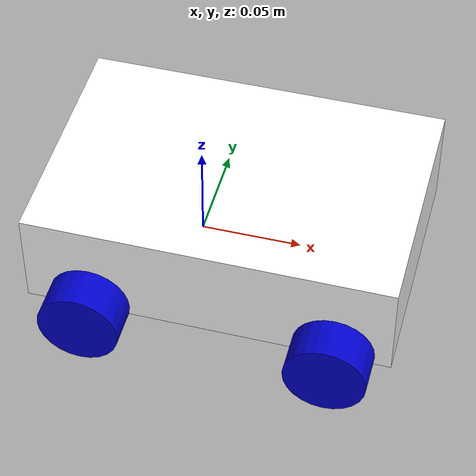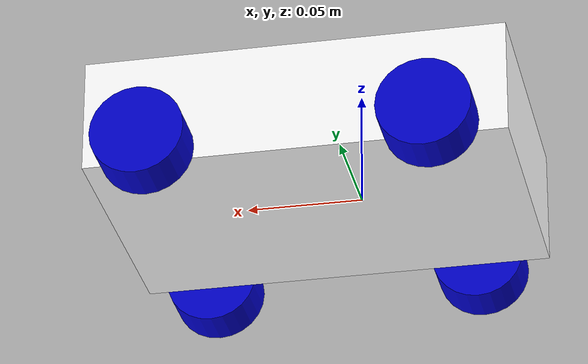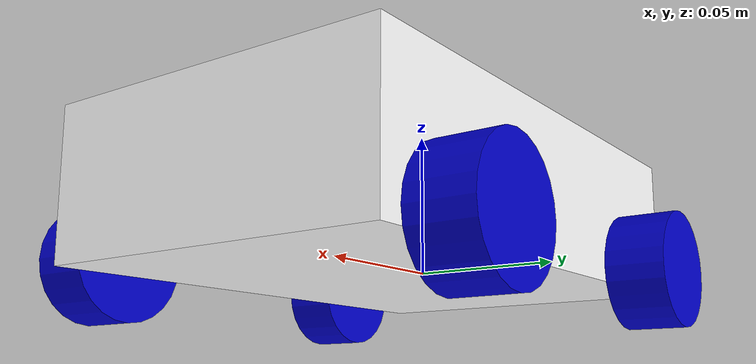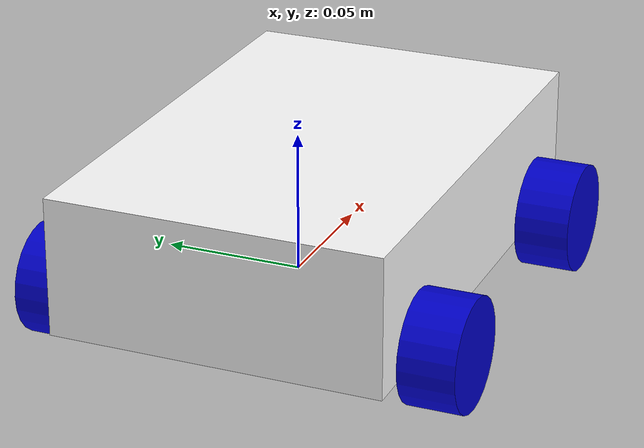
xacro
<?xml version="1.0"?>
<robot xmlns:xacro="http://www.ros.org/wiki/xacro"  name="robot">
    <xacro:arg name="use_ros2_control" default="false"/>
    <xacro:arg name="sim_mode" default="false"/>

    <xacro:include filename="robot_core.xacro"/>
    <xacro:if value="$(arg use_ros2_control)">
        <xacro:include filename="ros2_control.xacro" />
    </xacro:if>
    <xacro:unless value="$(arg use_ros2_control)">
        <xacro:include filename="gazebo_control.xacro" />
    </xacro:unless>
</robot>

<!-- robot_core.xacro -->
<robot xmlns:xacro="http://www.ros.org/wiki/xacro">
    <xacro:include filename="inertial_macros.xacro"/>

  <!--Base Link-->
  <link name="base_link">
  </link>

  <!--Chassis-->
  <joint name="chassis_joint" type="fixed">
    <parent link="base_link"/>
    <child link="chassis"/>
    <origin xyz="-0.06 0 0"/>
  </joint>

  <link name="chassis">
    <visual>
      <origin xyz="0.078 0 0.02"/>
      <geometry>
        <box size="0.18 0.12 0.05"/>
      </geometry>
      <material name="white"/>
    </visual>
    <collision>
      <origin xyz="0.078 0 0.02"/>
      <geometry>
        <box size="0.18 0.12 0.05"/>
      </geometry>
    </collision>
    <xacro:inertial_box mass="0.15" x="0.18" y="0.12" z="0.05">
        <origin xyz="0.078 0 0.02" rpy="0 0 0"/>
    </xacro:inertial_box>
  </link>
  <gazebo reference="chassis">
    <material>Gazebo/White</material>
  </gazebo>

  <!--Materials-->
  <material name="blue">
    <color rgba="0 0 0.8 1"/>
  </material>

  <material name="white">
    <color rgba="1 1 1 1"/>
  </material>

  <material name="green">
    <color rgba="0 0.8 0. 1"/>
  </material>

  <!--Front wheel right-->
  <joint name="front_wheel_right_joint" type="continuous">
    <parent link="base_link"/>
    <child link="front_wheel_right"/>
    <origin xyz="0.08 -0.07 0" rpy="${pi/2} 0 0"/>
    <axis xyz="0 0 -1"/>
  </joint>

  <link name="front_wheel_right">
    <visual>
      <geometry>
        <cylinder length="0.02" radius="0.02"/>
      </geometry>
      <material name="blue"/>
    </visual>
    <collision>
      <geometry>
        <cylinder length="0.02" radius="0.02"/>
      </geometry>
    </collision>
    <xacro:inertial_cylinder mass="0.05" length="0.02" radius="0.02">
        <origin xyz="0 0 0" rpy="0 0 0"/>
    </xacro:inertial_cylinder>
  </link>
  <gazebo reference="front_wheel_right">
    <material>Gazebo/Black</material>
  </gazebo>

  <!--Front wheel left-->
  <link name="front_wheel_left">
    <visual>
      <geometry>
        <cylinder length="0.02" radius="0.02"/>
      </geometry>
      <material name="blue"/>
    </visual>
    <collision>
      <geometry>
        <cylinder length="0.02" radius="0.02"/>
      </geometry>
    </collision>
    <xacro:inertial_cylinder mass="0.05" length="0.02" radius="0.02">
        <origin xyz="0 0 0" rpy="0 0 0"/>
    </xacro:inertial_cylinder>
  </link>
  <gazebo reference="front_wheel_left">
    <material>Gazebo/Black</material>
  </gazebo>

  <joint name="front_wheel_left_joint" type="continuous">
    <parent link="base_link"/>
    <child link="front_wheel_left"/>
    <origin xyz="0.08 0.07 0" rpy="-${pi/2} 0 0"/>
    <axis xyz="0 0 1"/>
  </joint>

  <!--Rear wheel right-->
  <link name="rear_wheel_right">
    <visual>
      <geometry>
        <cylinder length="0.02" radius="0.02"/>
      </geometry>
      <material name="blue"/>
    </visual>
    <collision>
      <geometry>
        <cylinder length="0.02" radius="0.02"/>
      </geometry>
    </collision>
    <xacro:inertial_cylinder mass="0.05" length="0.02" radius="0.02">
        <origin xyz="0 0 0" rpy="0 0 0"/>
    </xacro:inertial_cylinder>
  </link>
  <gazebo reference="rear_wheel_right">
    <material>Gazebo/Black</material>
    <mu1 value="0.001"/>
    <mu2 value="0.001"/>
  </gazebo>

  <joint name="rear_wheel_right_joint" type="continuous">
    <parent link="base_link"/>
    <child link="rear_wheel_right"/>
    <origin xyz="-0.04 -0.07 0" rpy="${pi/2} 0 0"/>
    <axis xyz="0 0 -1"/>
  </joint>

  <!--Rear wheel left-->
  <joint name="rear_wheel_left_joint" type="continuous">
    <parent link="base_link"/>
    <child link="rear_wheel_left"/>
    <origin xyz="-0.04 0.07 0" rpy="-${pi/2} 0 0"/>
    <axis xyz="0 0 1"/>
  </joint>
  <link name="rear_wheel_left">
    <visual>
      <geometry>
        <cylinder length="0.02" radius="0.02"/>
      </geometry>
      <material name="blue"/>
    </visual>
    <collision>
      <geometry>
        <cylinder length="0.02" radius="0.02"/>
      </geometry>
    </collision>
    <xacro:inertial_cylinder mass="0.05" length="0.02" radius="0.02">
        <origin xyz="0 0 0" rpy="0 0 0"/>
    </xacro:inertial_cylinder>
  </link>
  <gazebo reference="rear_wheel_left">
    <material>Gazebo/Black</material>
    <mu1 value="0.001"/>
    <mu2 value="0.001"/>
  </gazebo>

</robot>
